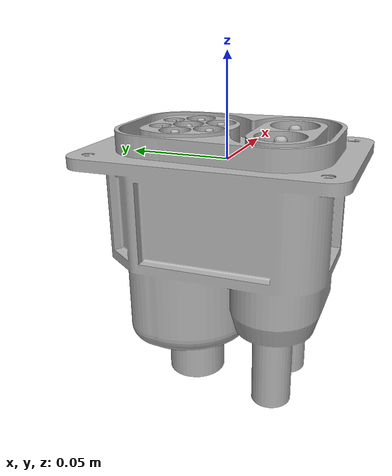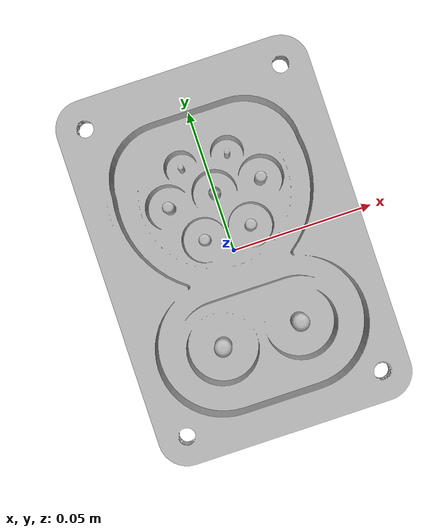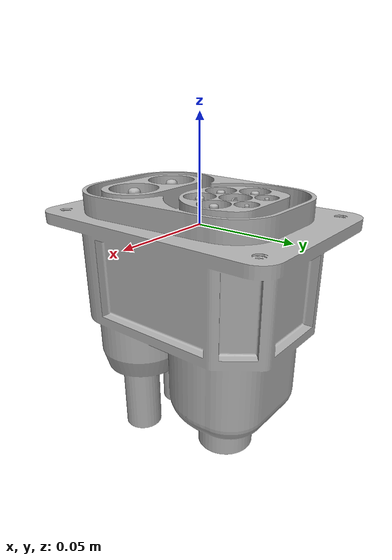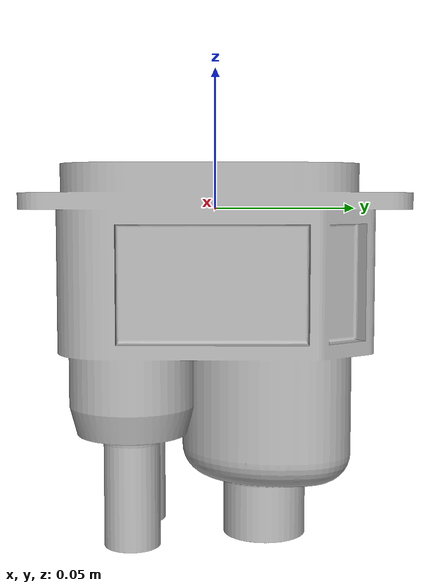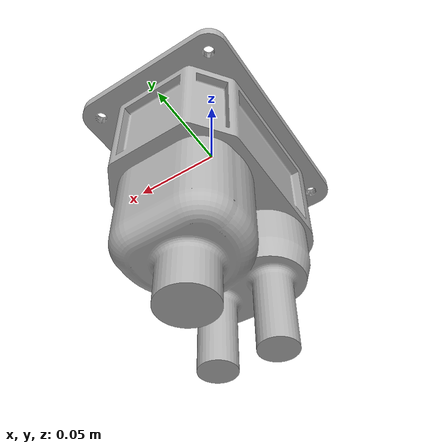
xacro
<?xml version="1.0" ?>
<robot name="Charging_Socket_CCS_Type2_V1" xmlns:xacro="http://www.ros.org/wiki/xacro">

<xacro:include filename="$(find Charging_Socket_CCS_Type2_V1_description)/urdf/materials.xacro" />
<xacro:include filename="$(find Charging_Socket_CCS_Type2_V1_description)/urdf/Charging_Socket_CCS_Type2_V1.trans" />
<xacro:include filename="$(find Charging_Socket_CCS_Type2_V1_description)/urdf/Charging_Socket_CCS_Type2_V1.gazebo" />
<link name="base_link">
  <inertial>
    <origin xyz="0.0 0.0 0.0" rpy="0 0 0"/>
    <mass value="0.0"/>
    <inertia ixx="0.0" iyy="0.0" izz="0.0" ixy="0.0" iyz="0.0" ixz="0.0"/>
  </inertial>
  <visual>
    <origin xyz="0 0 0" rpy="0 0 0"/>
    <geometry>
      <mesh filename="package://Charging_Socket_CCS_Type2_V1_description/meshes/base_link.stl" scale="0.001 0.001 0.001"/>
    </geometry>
    <material name="silver"/>
  </visual>
  <collision>
    <origin xyz="0 0 0" rpy="0 0 0"/>
    <geometry>
      <mesh filename="package://Charging_Socket_CCS_Type2_V1_description/meshes/base_link.stl" scale="0.001 0.001 0.001"/>
    </geometry>
  </collision>
</link>

</robot>

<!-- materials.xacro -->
<robot name="Charging_Socket_CCS_Type2_V1" xmlns:xacro="http://www.ros.org/wiki/xacro" >

<material name="silver">
  <color rgba="0.700 0.700 0.700 1.000"/>
</material>

</robot>

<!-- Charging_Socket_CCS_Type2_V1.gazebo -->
<robot name="Charging_Socket_CCS_Type2_V1" xmlns:xacro="http://www.ros.org/wiki/xacro" >

<xacro:property name="body_color" value="Gazebo/Silver" />

<gazebo>
  <plugin name="control" filename="libgazebo_ros_control.so"/>
</gazebo>
<gazebo reference="base_link">
  <material>${body_color}</material>
  <mu1>0.2</mu1>
  <mu2>0.2</mu2>
  <selfCollide>true</selfCollide>
  <gravity>true</gravity>
</gazebo>

</robot>
